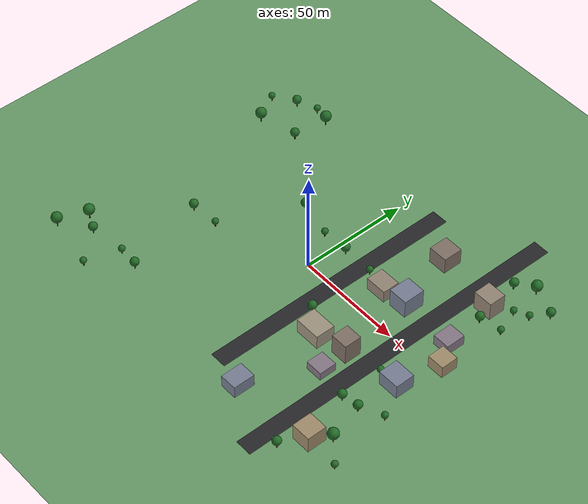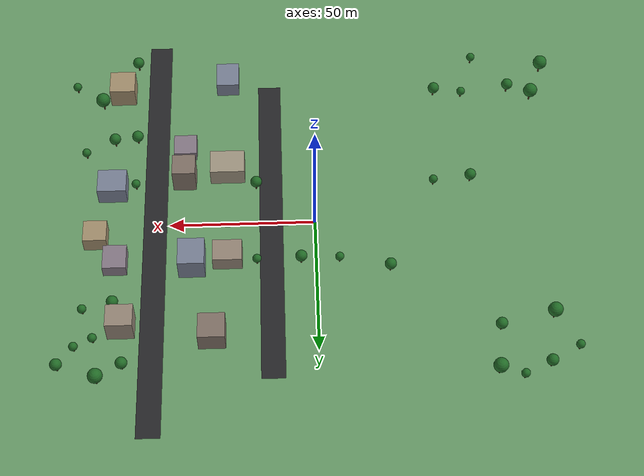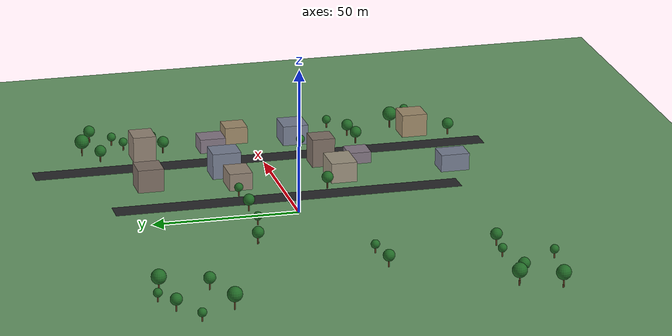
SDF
<sdf version="1.9">
 <world name="aruco_city">
  <model name="ground_plane">
   <static>true</static>
   <link name="link">
    <collision name="collision">
     <geometry><plane><normal>0 0 1</normal><size>200 200</size></plane></geometry>
    </collision>
    <visual name="visual">
     <geometry><plane><normal>0 0 1</normal><size>200 200</size></plane></geometry>
     <material><ambient>0.4 0.6 0.4 1</ambient><diffuse>0.4 0.6 0.4 1</diffuse></material>
    </visual>
   </link>
  </model>
  <model name="aruco_pad_B">
   <static>true</static>
   <pose>10 0 0.001 0 0 0</pose>
   <link name="link">
    <visual name="visual">
     <geometry><box><size>2.0 2.0 0.001</size></box></geometry>
     <material>
      <diffuse>1 1 1 1</diffuse>
      <pbr><metal><albedo_map>model://aruco_17/materials/textures/aruco_17.png</albedo_map></metal></pbr>
     </material>
    </visual>
    <collision name="collision"><geometry><box><size>2.0 2.0 0.001</size></box></geometry></collision>
   </link>
  </model>
  <model name="aruco_pad_C">
   <static>true</static>
   <pose>20 0 0.001 0 0 0</pose>
   <link name="link">
    <visual name="visual">
     <geometry><box><size>2.0 2.0 0.001</size></box></geometry>
     <material>
      <diffuse>1 1 1 1</diffuse>
      <pbr><metal><albedo_map>model://aruco_17/materials/textures/aruco_17.png</albedo_map></metal></pbr>
     </material>
    </visual>
    <collision name="collision"><geometry><box><size>2.0 2.0 0.001</size></box></geometry></collision>
   </link>
  </model>
  <model name="aruco_pad_D">
   <static>true</static>
   <pose>30 0 0.001 0 0 0</pose>
   <link name="link">
    <visual name="visual">
     <geometry><box><size>2.0 2.0 0.001</size></box></geometry>
     <material>
      <diffuse>1 1 1 1</diffuse>
      <pbr><metal><albedo_map>model://aruco_17/materials/textures/aruco_17.png</albedo_map></metal></pbr>
     </material>
    </visual>
    <collision name="collision"><geometry><box><size>2.0 2.0 0.001</size></box></geometry></collision>
   </link>
  </model>
  <model name="road_ns">
   <static>true</static>
   <pose>15 0 0.002 0 0 0</pose>
   <link name="link">
    <collision name="collision"><geometry><box><size>8 120 0.004</size></box></geometry></collision>
    <visual name="visual">
     <geometry><box><size>8 120 0.004</size></box></geometry>
     <material><ambient>0.15 0.15 0.16 1</ambient><diffuse>0.15 0.15 0.16 1</diffuse></material>
    </visual>
   </link>
  </model>
  <model name="bldg_s4">
   <static>true</static>
   <pose>30 -22 3.5 0 0 0</pose>
   <link name="link">
    <collision name="collision"><geometry><box><size>12 9 7</size></box></geometry></collision>
    <visual name="visual">
     <geometry><box><size>12 9 7</size></box></geometry>
     <material><ambient>0.62 0.58 0.5 1</ambient><diffuse>0.62 0.58 0.5 1</diffuse></material>
    </visual>
   </link>
  </model>
  <model name="bldg_s5">
   <static>true</static>
   <pose>45 -19 5.0 0 0 0</pose>
   <link name="link">
    <collision name="collision"><geometry><box><size>8 8 10</size></box></geometry></collision>
    <visual name="visual">
     <geometry><box><size>8 8 10</size></box></geometry>
     <material><ambient>0.5 0.44 0.4 1</ambient><diffuse>0.5 0.44 0.4 1</diffuse></material>
    </visual>
   </link>
  </model>
  <model name="bldg_n1">
   <static>true</static>
   <pose>30 14 3.0 0 0 0</pose>
   <link name="link">
    <collision name="collision"><geometry><box><size>10 8 6</size></box></geometry></collision>
    <visual name="visual">
     <geometry><box><size>10 8 6</size></box></geometry>
     <material><ambient>0.58 0.52 0.46 1</ambient><diffuse>0.58 0.52 0.46 1</diffuse></material>
    </visual>
   </link>
  </model>
  <model name="bldg_n2">
   <static>true</static>
   <pose>42 16 4.5 0 0 0</pose>
   <link name="link">
    <collision name="collision"><geometry><box><size>9 10 9</size></box></geometry></collision>
    <visual name="visual">
     <geometry><box><size>9 10 9</size></box></geometry>
     <material><ambient>0.47 0.5 0.58 1</ambient><diffuse>0.47 0.5 0.58 1</diffuse></material>
    </visual>
   </link>
  </model>
  <model name="road_ns_east">
   <static>true</static>
   <pose>55 0 0.002 0 0 0</pose>
   <link name="link">
    <collision name="collision"><geometry><box><size>8 160 0.004</size></box></geometry></collision>
    <visual name="visual">
     <geometry><box><size>8 160 0.004</size></box></geometry>
     <material><ambient>0.15 0.15 0.16 1</ambient><diffuse>0.15 0.15 0.16 1</diffuse></material>
    </visual>
   </link>
  </model>
  <model name="bldg_n9">
   <static>true</static>
   <pose>35 44 4.0 0 0 0</pose>
   <link name="link">
    <collision name="collision"><geometry><box><size>9 9 8</size></box></geometry></collision>
    <visual name="visual">
     <geometry><box><size>9 9 8</size></box></geometry>
     <material><ambient>0.5 0.44 0.4 1</ambient><diffuse>0.5 0.44 0.4 1</diffuse></material>
    </visual>
   </link>
  </model>
  <model name="bldg_n10">
   <static>true</static>
   <pose>65 40 4.5 0 0 0</pose>
   <link name="link">
    <collision name="collision"><geometry><box><size>9 8 9</size></box></geometry></collision>
    <visual name="visual">
     <geometry><box><size>9 8 9</size></box></geometry>
     <material><ambient>0.58 0.52 0.46 1</ambient><diffuse>0.58 0.52 0.46 1</diffuse></material>
    </visual>
   </link>
  </model>
  <model name="bldg_e1">
   <static>true</static>
   <pose>70 -15 3.5 0 0 0</pose>
   <link name="link">
    <collision name="collision"><geometry><box><size>10 9 7</size></box></geometry></collision>
    <visual name="visual">
     <geometry><box><size>10 9 7</size></box></geometry>
     <material><ambient>0.47 0.5 0.58 1</ambient><diffuse>0.47 0.5 0.58 1</diffuse></material>
    </visual>
   </link>
  </model>
  <model name="bldg_e2">
   <static>true</static>
   <pose>75 5 3.0 0 0 0</pose>
   <link name="link">
    <collision name="collision"><geometry><box><size>8 8 6</size></box></geometry></collision>
    <visual name="visual">
     <geometry><box><size>8 8 6</size></box></geometry>
     <material><ambient>0.63 0.55 0.42 1</ambient><diffuse>0.63 0.55 0.42 1</diffuse></material>
    </visual>
   </link>
  </model>
  <model name="bldg_e3">
   <static>true</static>
   <pose>68 15 2.5 0 0 0</pose>
   <link name="link">
    <collision name="collision"><geometry><box><size>8 9 5</size></box></geometry></collision>
    <visual name="visual">
     <geometry><box><size>8 9 5</size></box></geometry>
     <material><ambient>0.52 0.47 0.52 1</ambient><diffuse>0.52 0.47 0.52 1</diffuse></material>
    </visual>
   </link>
  </model>
  <model name="bldg_s9">
   <static>true</static>
   <pose>30 -62 3.0 0 0 0</pose>
   <link name="link">
    <collision name="collision"><geometry><box><size>8 10 6</size></box></geometry></collision>
    <visual name="visual">
     <geometry><box><size>8 10 6</size></box></geometry>
     <material><ambient>0.47 0.5 0.58 1</ambient><diffuse>0.47 0.5 0.58 1</diffuse></material>
    </visual>
   </link>
  </model>
  <model name="bldg_s10">
   <static>true</static>
   <pose>68 -58 4.0 0 0 0</pose>
   <link name="link">
    <collision name="collision"><geometry><box><size>9 9 8</size></box></geometry></collision>
    <visual name="visual">
     <geometry><box><size>9 9 8</size></box></geometry>
     <material><ambient>0.63 0.55 0.42 1</ambient><diffuse>0.63 0.55 0.42 1</diffuse></material>
    </visual>
   </link>
  </model>
  <model name="bldg_s11">
   <static>true</static>
   <pose>45 -32 2.0 0 0 0</pose>
   <link name="link">
    <collision name="collision"><geometry><box><size>8 8 4</size></box></geometry></collision>
    <visual name="visual">
     <geometry><box><size>8 8 4</size></box></geometry>
     <material><ambient>0.52 0.47 0.52 1</ambient><diffuse>0.52 0.47 0.52 1</diffuse></material>
    </visual>
   </link>
  </model>
  <model name="trees_north">
   <static>true</static>
   <link name="link">
    <collision name="trunk_c_0">
     <pose>-58 60 2.0 0 0 0</pose>
     <geometry><cylinder><radius>0.25</radius><length>4.0</length></cylinder></geometry>
    </collision>
    <visual name="trunk_0">
     <pose>-58 60 2.0 0 0 0</pose>
     <geometry><cylinder><radius>0.25</radius><length>4.0</length></cylinder></geometry>
     <material><ambient>0.35 0.23 0.12 1</ambient><diffuse>0.35 0.23 0.12 1</diffuse></material>
    </visual>
    <visual name="canopy_0">
     <pose>-58 60 5.2 0 0 0</pose>
     <geometry><sphere><radius>2.5</radius></sphere></geometry>
     <material><ambient>0.13 0.42 0.15 1</ambient><diffuse>0.13 0.42 0.15 1</diffuse></material>
    </visual>
    <collision name="trunk_c_1">
     <pose>-75 58 1.6 0 0 0</pose>
     <geometry><cylinder><radius>0.25</radius><length>3.2</length></cylinder></geometry>
    </collision>
    <visual name="trunk_1">
     <pose>-75 58 1.6 0 0 0</pose>
     <geometry><cylinder><radius>0.25</radius><length>3.2</length></cylinder></geometry>
     <material><ambient>0.35 0.23 0.12 1</ambient><diffuse>0.35 0.23 0.12 1</diffuse></material>
    </visual>
    <visual name="canopy_1">
     <pose>-75 58 4.1 0 0 0</pose>
     <geometry><sphere><radius>2.0</radius></sphere></geometry>
     <material><ambient>0.13 0.42 0.15 1</ambient><diffuse>0.13 0.42 0.15 1</diffuse></material>
    </visual>
    <collision name="trunk_c_2">
     <pose>-66 62 1.25 0 0 0</pose>
     <geometry><cylinder><radius>0.25</radius><length>2.5</length></cylinder></geometry>
    </collision>
    <visual name="trunk_2">
     <pose>-66 62 1.25 0 0 0</pose>
     <geometry><cylinder><radius>0.25</radius><length>2.5</length></cylinder></geometry>
     <material><ambient>0.35 0.23 0.12 1</ambient><diffuse>0.35 0.23 0.12 1</diffuse></material>
    </visual>
    <visual name="canopy_2">
     <pose>-66 62 3.1 0 0 0</pose>
     <geometry><sphere><radius>1.5</radius></sphere></geometry>
     <material><ambient>0.13 0.42 0.15 1</ambient><diffuse>0.13 0.42 0.15 1</diffuse></material>
    </visual>
    <collision name="trunk_c_3">
     <pose>-60 44 1.6 0 0 0</pose>
     <geometry><cylinder><radius>0.25</radius><length>3.2</length></cylinder></geometry>
    </collision>
    <visual name="trunk_3">
     <pose>-60 44 1.6 0 0 0</pose>
     <geometry><cylinder><radius>0.25</radius><length>3.2</length></cylinder></geometry>
     <material><ambient>0.35 0.23 0.12 1</ambient><diffuse>0.35 0.23 0.12 1</diffuse></material>
    </visual>
    <visual name="canopy_3">
     <pose>-60 44 4.1 0 0 0</pose>
     <geometry><sphere><radius>2.0</radius></sphere></geometry>
     <material><ambient>0.13 0.42 0.15 1</ambient><diffuse>0.13 0.42 0.15 1</diffuse></material>
    </visual>
    <collision name="trunk_c_4">
     <pose>-78 40 2.0 0 0 0</pose>
     <geometry><cylinder><radius>0.25</radius><length>4.0</length></cylinder></geometry>
    </collision>
    <visual name="trunk_4">
     <pose>-78 40 2.0 0 0 0</pose>
     <geometry><cylinder><radius>0.25</radius><length>4.0</length></cylinder></geometry>
     <material><ambient>0.35 0.23 0.12 1</ambient><diffuse>0.35 0.23 0.12 1</diffuse></material>
    </visual>
    <visual name="canopy_4">
     <pose>-78 40 5.2 0 0 0</pose>
     <geometry><sphere><radius>2.5</radius></sphere></geometry>
     <material><ambient>0.13 0.42 0.15 1</ambient><diffuse>0.13 0.42 0.15 1</diffuse></material>
    </visual>
    <collision name="trunk_c_5">
     <pose>-85 52 1.25 0 0 0</pose>
     <geometry><cylinder><radius>0.25</radius><length>2.5</length></cylinder></geometry>
    </collision>
    <visual name="trunk_5">
     <pose>-85 52 1.25 0 0 0</pose>
     <geometry><cylinder><radius>0.25</radius><length>2.5</length></cylinder></geometry>
     <material><ambient>0.35 0.23 0.12 1</ambient><diffuse>0.35 0.23 0.12 1</diffuse></material>
    </visual>
    <visual name="canopy_5">
     <pose>-85 52 3.1 0 0 0</pose>
     <geometry><sphere><radius>1.5</radius></sphere></geometry>
     <material><ambient>0.13 0.42 0.15 1</ambient><diffuse>0.13 0.42 0.15 1</diffuse></material>
    </visual>
    <collision name="trunk_c_6">
     <pose>64 55 1.6 0 0 0</pose>
     <geometry><cylinder><radius>0.25</radius><length>3.2</length></cylinder></geometry>
    </collision>
    <visual name="trunk_6">
     <pose>64 55 1.6 0 0 0</pose>
     <geometry><cylinder><radius>0.25</radius><length>3.2</length></cylinder></geometry>
     <material><ambient>0.35 0.23 0.12 1</ambient><diffuse>0.35 0.23 0.12 1</diffuse></material>
    </visual>
    <visual name="canopy_6">
     <pose>64 55 4.1 0 0 0</pose>
     <geometry><sphere><radius>2.0</radius></sphere></geometry>
     <material><ambient>0.13 0.42 0.15 1</ambient><diffuse>0.13 0.42 0.15 1</diffuse></material>
    </visual>
    <collision name="trunk_c_7">
     <pose>72 60 2.0 0 0 0</pose>
     <geometry><cylinder><radius>0.25</radius><length>4.0</length></cylinder></geometry>
    </collision>
    <visual name="trunk_7">
     <pose>72 60 2.0 0 0 0</pose>
     <geometry><cylinder><radius>0.25</radius><length>4.0</length></cylinder></geometry>
     <material><ambient>0.35 0.23 0.12 1</ambient><diffuse>0.35 0.23 0.12 1</diffuse></material>
    </visual>
    <visual name="canopy_7">
     <pose>72 60 5.2 0 0 0</pose>
     <geometry><sphere><radius>2.5</radius></sphere></geometry>
     <material><ambient>0.13 0.42 0.15 1</ambient><diffuse>0.13 0.42 0.15 1</diffuse></material>
    </visual>
    <collision name="trunk_c_8">
     <pose>80 48 1.25 0 0 0</pose>
     <geometry><cylinder><radius>0.25</radius><length>2.5</length></cylinder></geometry>
    </collision>
    <visual name="trunk_8">
     <pose>80 48 1.25 0 0 0</pose>
     <geometry><cylinder><radius>0.25</radius><length>2.5</length></cylinder></geometry>
     <material><ambient>0.35 0.23 0.12 1</ambient><diffuse>0.35 0.23 0.12 1</diffuse></material>
    </visual>
    <visual name="canopy_8">
     <pose>80 48 3.1 0 0 0</pose>
     <geometry><sphere><radius>1.5</radius></sphere></geometry>
     <material><ambient>0.13 0.42 0.15 1</ambient><diffuse>0.13 0.42 0.15 1</diffuse></material>
    </visual>
    <collision name="trunk_c_9">
     <pose>68 32 1.6 0 0 0</pose>
     <geometry><cylinder><radius>0.25</radius><length>3.2</length></cylinder></geometry>
    </collision>
    <visual name="trunk_9">
     <pose>68 32 1.6 0 0 0</pose>
     <geometry><cylinder><radius>0.25</radius><length>3.2</length></cylinder></geometry>
     <material><ambient>0.35 0.23 0.12 1</ambient><diffuse>0.35 0.23 0.12 1</diffuse></material>
    </visual>
    <visual name="canopy_9">
     <pose>68 32 4.1 0 0 0</pose>
     <geometry><sphere><radius>2.0</radius></sphere></geometry>
     <material><ambient>0.13 0.42 0.15 1</ambient><diffuse>0.13 0.42 0.15 1</diffuse></material>
    </visual>
    <collision name="trunk_c_10">
     <pose>78 34 1.25 0 0 0</pose>
     <geometry><cylinder><radius>0.25</radius><length>2.5</length></cylinder></geometry>
    </collision>
    <visual name="trunk_10">
     <pose>78 34 1.25 0 0 0</pose>
     <geometry><cylinder><radius>0.25</radius><length>2.5</length></cylinder></geometry>
     <material><ambient>0.35 0.23 0.12 1</ambient><diffuse>0.35 0.23 0.12 1</diffuse></material>
    </visual>
    <visual name="canopy_10">
     <pose>78 34 3.1 0 0 0</pose>
     <geometry><sphere><radius>1.5</radius></sphere></geometry>
     <material><ambient>0.13 0.42 0.15 1</ambient><diffuse>0.13 0.42 0.15 1</diffuse></material>
    </visual>
    <collision name="trunk_c_11">
     <pose>85 55 1.6 0 0 0</pose>
     <geometry><cylinder><radius>0.25</radius><length>3.2</length></cylinder></geometry>
    </collision>
    <visual name="trunk_11">
     <pose>85 55 1.6 0 0 0</pose>
     <geometry><cylinder><radius>0.25</radius><length>3.2</length></cylinder></geometry>
     <material><ambient>0.35 0.23 0.12 1</ambient><diffuse>0.35 0.23 0.12 1</diffuse></material>
    </visual>
    <visual name="canopy_11">
     <pose>85 55 4.1 0 0 0</pose>
     <geometry><sphere><radius>2.0</radius></sphere></geometry>
     <material><ambient>0.13 0.42 0.15 1</ambient><diffuse>0.13 0.42 0.15 1</diffuse></material>
    </visual>
    <collision name="trunk_c_12">
     <pose>74 45 1.25 0 0 0</pose>
     <geometry><cylinder><radius>0.25</radius><length>2.5</length></cylinder></geometry>
    </collision>
    <visual name="trunk_12">
     <pose>74 45 1.25 0 0 0</pose>
     <geometry><cylinder><radius>0.25</radius><length>2.5</length></cylinder></geometry>
     <material><ambient>0.35 0.23 0.12 1</ambient><diffuse>0.35 0.23 0.12 1</diffuse></material>
    </visual>
    <visual name="canopy_12">
     <pose>74 45 3.1 0 0 0</pose>
     <geometry><sphere><radius>1.5</radius></sphere></geometry>
     <material><ambient>0.13 0.42 0.15 1</ambient><diffuse>0.13 0.42 0.15 1</diffuse></material>
    </visual>
    <collision name="trunk_c_13">
     <pose>-8 16 1.25 0 0 0</pose>
     <geometry><cylinder><radius>0.25</radius><length>2.5</length></cylinder></geometry>
    </collision>
    <visual name="trunk_13">
     <pose>-8 16 1.25 0 0 0</pose>
     <geometry><cylinder><radius>0.25</radius><length>2.5</length></cylinder></geometry>
     <material><ambient>0.35 0.23 0.12 1</ambient><diffuse>0.35 0.23 0.12 1</diffuse></material>
    </visual>
    <visual name="canopy_13">
     <pose>-8 16 3.1 0 0 0</pose>
     <geometry><sphere><radius>1.5</radius></sphere></geometry>
     <material><ambient>0.13 0.42 0.15 1</ambient><diffuse>0.13 0.42 0.15 1</diffuse></material>
    </visual>
    <collision name="trunk_c_14">
     <pose>5 16 1.6 0 0 0</pose>
     <geometry><cylinder><radius>0.25</radius><length>3.2</length></cylinder></geometry>
    </collision>
    <visual name="trunk_14">
     <pose>5 16 1.6 0 0 0</pose>
     <geometry><cylinder><radius>0.25</radius><length>3.2</length></cylinder></geometry>
     <material><ambient>0.35 0.23 0.12 1</ambient><diffuse>0.35 0.23 0.12 1</diffuse></material>
    </visual>
    <visual name="canopy_14">
     <pose>5 16 4.1 0 0 0</pose>
     <geometry><sphere><radius>2.0</radius></sphere></geometry>
     <material><ambient>0.13 0.42 0.15 1</ambient><diffuse>0.13 0.42 0.15 1</diffuse></material>
    </visual>
    <collision name="trunk_c_15">
     <pose>20 16 1.25 0 0 0</pose>
     <geometry><cylinder><radius>0.25</radius><length>2.5</length></cylinder></geometry>
    </collision>
    <visual name="trunk_15">
     <pose>20 16 1.25 0 0 0</pose>
     <geometry><cylinder><radius>0.25</radius><length>2.5</length></cylinder></geometry>
     <material><ambient>0.35 0.23 0.12 1</ambient><diffuse>0.35 0.23 0.12 1</diffuse></material>
    </visual>
    <visual name="canopy_15">
     <pose>20 16 3.1 0 0 0</pose>
     <geometry><sphere><radius>1.5</radius></sphere></geometry>
     <material><ambient>0.13 0.42 0.15 1</ambient><diffuse>0.13 0.42 0.15 1</diffuse></material>
    </visual>
    <collision name="trunk_c_16">
     <pose>-25 20 1.6 0 0 0</pose>
     <geometry><cylinder><radius>0.25</radius><length>3.2</length></cylinder></geometry>
    </collision>
    <visual name="trunk_16">
     <pose>-25 20 1.6 0 0 0</pose>
     <geometry><cylinder><radius>0.25</radius><length>3.2</length></cylinder></geometry>
     <material><ambient>0.35 0.23 0.12 1</ambient><diffuse>0.35 0.23 0.12 1</diffuse></material>
    </visual>
    <visual name="canopy_16">
     <pose>-25 20 4.1 0 0 0</pose>
     <geometry><sphere><radius>2.0</radius></sphere></geometry>
     <material><ambient>0.13 0.42 0.15 1</ambient><diffuse>0.13 0.42 0.15 1</diffuse></material>
    </visual>
   </link>
  </model>
  <model name="trees_south">
   <static>true</static>
   <link name="link">
    <collision name="trunk_c_0">
     <pose>-80 -52 2.0 0 0 0</pose>
     <geometry><cylinder><radius>0.25</radius><length>4.0</length></cylinder></geometry>
    </collision>
    <visual name="trunk_0">
     <pose>-80 -52 2.0 0 0 0</pose>
     <geometry><cylinder><radius>0.25</radius><length>4.0</length></cylinder></geometry>
     <material><ambient>0.35 0.23 0.12 1</ambient><diffuse>0.35 0.23 0.12 1</diffuse></material>
    </visual>
    <visual name="canopy_0">
     <pose>-80 -52 5.2 0 0 0</pose>
     <geometry><sphere><radius>2.5</radius></sphere></geometry>
     <material><ambient>0.13 0.42 0.15 1</ambient><diffuse>0.13 0.42 0.15 1</diffuse></material>
    </visual>
    <collision name="trunk_c_1">
     <pose>-72 -56 1.6 0 0 0</pose>
     <geometry><cylinder><radius>0.25</radius><length>3.2</length></cylinder></geometry>
    </collision>
    <visual name="trunk_1">
     <pose>-72 -56 1.6 0 0 0</pose>
     <geometry><cylinder><radius>0.25</radius><length>3.2</length></cylinder></geometry>
     <material><ambient>0.35 0.23 0.12 1</ambient><diffuse>0.35 0.23 0.12 1</diffuse></material>
    </visual>
    <visual name="canopy_1">
     <pose>-72 -56 4.1 0 0 0</pose>
     <geometry><sphere><radius>2.0</radius></sphere></geometry>
     <material><ambient>0.13 0.42 0.15 1</ambient><diffuse>0.13 0.42 0.15 1</diffuse></material>
    </visual>
    <collision name="trunk_c_2">
     <pose>-60 -70 1.25 0 0 0</pose>
     <geometry><cylinder><radius>0.25</radius><length>2.5</length></cylinder></geometry>
    </collision>
    <visual name="trunk_2">
     <pose>-60 -70 1.25 0 0 0</pose>
     <geometry><cylinder><radius>0.25</radius><length>2.5</length></cylinder></geometry>
     <material><ambient>0.35 0.23 0.12 1</ambient><diffuse>0.35 0.23 0.12 1</diffuse></material>
    </visual>
    <visual name="canopy_2">
     <pose>-60 -70 3.1 0 0 0</pose>
     <geometry><sphere><radius>1.5</radius></sphere></geometry>
     <material><ambient>0.13 0.42 0.15 1</ambient><diffuse>0.13 0.42 0.15 1</diffuse></material>
    </visual>
    <collision name="trunk_c_3">
     <pose>-45 -55 1.6 0 0 0</pose>
     <geometry><cylinder><radius>0.25</radius><length>3.2</length></cylinder></geometry>
    </collision>
    <visual name="trunk_3">
     <pose>-45 -55 1.6 0 0 0</pose>
     <geometry><cylinder><radius>0.25</radius><length>3.2</length></cylinder></geometry>
     <material><ambient>0.35 0.23 0.12 1</ambient><diffuse>0.35 0.23 0.12 1</diffuse></material>
    </visual>
    <visual name="canopy_3">
     <pose>-45 -55 4.1 0 0 0</pose>
     <geometry><sphere><radius>2.0</radius></sphere></geometry>
     <material><ambient>0.13 0.42 0.15 1</ambient><diffuse>0.13 0.42 0.15 1</diffuse></material>
    </visual>
    <collision name="trunk_c_4">
     <pose>-85 -65 2.0 0 0 0</pose>
     <geometry><cylinder><radius>0.25</radius><length>4.0</length></cylinder></geometry>
    </collision>
    <visual name="trunk_4">
     <pose>-85 -65 2.0 0 0 0</pose>
     <geometry><cylinder><radius>0.25</radius><length>4.0</length></cylinder></geometry>
     <material><ambient>0.35 0.23 0.12 1</ambient><diffuse>0.35 0.23 0.12 1</diffuse></material>
    </visual>
    <visual name="canopy_4">
     <pose>-85 -65 5.2 0 0 0</pose>
     <geometry><sphere><radius>2.5</radius></sphere></geometry>
     <material><ambient>0.13 0.42 0.15 1</ambient><diffuse>0.13 0.42 0.15 1</diffuse></material>
    </visual>
    <collision name="trunk_c_5">
     <pose>-55 -54 1.25 0 0 0</pose>
     <geometry><cylinder><radius>0.25</radius><length>2.5</length></cylinder></geometry>
    </collision>
    <visual name="trunk_5">
     <pose>-55 -54 1.25 0 0 0</pose>
     <geometry><cylinder><radius>0.25</radius><length>2.5</length></cylinder></geometry>
     <material><ambient>0.35 0.23 0.12 1</ambient><diffuse>0.35 0.23 0.12 1</diffuse></material>
    </visual>
    <visual name="canopy_5">
     <pose>-55 -54 3.1 0 0 0</pose>
     <geometry><sphere><radius>1.5</radius></sphere></geometry>
     <material><ambient>0.13 0.42 0.15 1</ambient><diffuse>0.13 0.42 0.15 1</diffuse></material>
    </visual>
    <collision name="trunk_c_6">
     <pose>62 -36 1.6 0 0 0</pose>
     <geometry><cylinder><radius>0.25</radius><length>3.2</length></cylinder></geometry>
    </collision>
    <visual name="trunk_6">
     <pose>62 -36 1.6 0 0 0</pose>
     <geometry><cylinder><radius>0.25</radius><length>3.2</length></cylinder></geometry>
     <material><ambient>0.35 0.23 0.12 1</ambient><diffuse>0.35 0.23 0.12 1</diffuse></material>
    </visual>
    <visual name="canopy_6">
     <pose>62 -36 4.1 0 0 0</pose>
     <geometry><sphere><radius>2.0</radius></sphere></geometry>
     <material><ambient>0.13 0.42 0.15 1</ambient><diffuse>0.13 0.42 0.15 1</diffuse></material>
    </visual>
    <collision name="trunk_c_7">
     <pose>75 -52 2.0 0 0 0</pose>
     <geometry><cylinder><radius>0.25</radius><length>4.0</length></cylinder></geometry>
    </collision>
    <visual name="trunk_7">
     <pose>75 -52 2.0 0 0 0</pose>
     <geometry><cylinder><radius>0.25</radius><length>4.0</length></cylinder></geometry>
     <material><ambient>0.35 0.23 0.12 1</ambient><diffuse>0.35 0.23 0.12 1</diffuse></material>
    </visual>
    <visual name="canopy_7">
     <pose>75 -52 5.2 0 0 0</pose>
     <geometry><sphere><radius>2.5</radius></sphere></geometry>
     <material><ambient>0.13 0.42 0.15 1</ambient><diffuse>0.13 0.42 0.15 1</diffuse></material>
    </visual>
    <collision name="trunk_c_8">
     <pose>85 -60 1.25 0 0 0</pose>
     <geometry><cylinder><radius>0.25</radius><length>2.5</length></cylinder></geometry>
    </collision>
    <visual name="trunk_8">
     <pose>85 -60 1.25 0 0 0</pose>
     <geometry><cylinder><radius>0.25</radius><length>2.5</length></cylinder></geometry>
     <material><ambient>0.35 0.23 0.12 1</ambient><diffuse>0.35 0.23 0.12 1</diffuse></material>
    </visual>
    <visual name="canopy_8">
     <pose>85 -60 3.1 0 0 0</pose>
     <geometry><sphere><radius>1.5</radius></sphere></geometry>
     <material><ambient>0.13 0.42 0.15 1</ambient><diffuse>0.13 0.42 0.15 1</diffuse></material>
    </visual>
    <collision name="trunk_c_9">
     <pose>63 -70 1.6 0 0 0</pose>
     <geometry><cylinder><radius>0.25</radius><length>3.2</length></cylinder></geometry>
    </collision>
    <visual name="trunk_9">
     <pose>63 -70 1.6 0 0 0</pose>
     <geometry><cylinder><radius>0.25</radius><length>3.2</length></cylinder></geometry>
     <material><ambient>0.35 0.23 0.12 1</ambient><diffuse>0.35 0.23 0.12 1</diffuse></material>
    </visual>
    <visual name="canopy_9">
     <pose>63 -70 4.1 0 0 0</pose>
     <geometry><sphere><radius>2.0</radius></sphere></geometry>
     <material><ambient>0.13 0.42 0.15 1</ambient><diffuse>0.13 0.42 0.15 1</diffuse></material>
    </visual>
    <collision name="trunk_c_10">
     <pose>80 -30 1.25 0 0 0</pose>
     <geometry><cylinder><radius>0.25</radius><length>2.5</length></cylinder></geometry>
    </collision>
    <visual name="trunk_10">
     <pose>80 -30 1.25 0 0 0</pose>
     <geometry><cylinder><radius>0.25</radius><length>2.5</length></cylinder></geometry>
     <material><ambient>0.35 0.23 0.12 1</ambient><diffuse>0.35 0.23 0.12 1</diffuse></material>
    </visual>
    <visual name="canopy_10">
     <pose>80 -30 3.1 0 0 0</pose>
     <geometry><sphere><radius>1.5</radius></sphere></geometry>
     <material><ambient>0.13 0.42 0.15 1</ambient><diffuse>0.13 0.42 0.15 1</diffuse></material>
    </visual>
    <collision name="trunk_c_11">
     <pose>70 -35 1.6 0 0 0</pose>
     <geometry><cylinder><radius>0.25</radius><length>3.2</length></cylinder></geometry>
    </collision>
    <visual name="trunk_11">
     <pose>70 -35 1.6 0 0 0</pose>
     <geometry><cylinder><radius>0.25</radius><length>3.2</length></cylinder></geometry>
     <material><ambient>0.35 0.23 0.12 1</ambient><diffuse>0.35 0.23 0.12 1</diffuse></material>
    </visual>
    <visual name="canopy_11">
     <pose>70 -35 4.1 0 0 0</pose>
     <geometry><sphere><radius>2.0</radius></sphere></geometry>
     <material><ambient>0.13 0.42 0.15 1</ambient><diffuse>0.13 0.42 0.15 1</diffuse></material>
    </visual>
    <collision name="trunk_c_12">
     <pose>-55 -16 1.6 0 0 0</pose>
     <geometry><cylinder><radius>0.25</radius><length>3.2</length></cylinder></geometry>
    </collision>
    <visual name="trunk_12">
     <pose>-55 -16 1.6 0 0 0</pose>
     <geometry><cylinder><radius>0.25</radius><length>3.2</length></cylinder></geometry>
     <material><ambient>0.35 0.23 0.12 1</ambient><diffuse>0.35 0.23 0.12 1</diffuse></material>
    </visual>
    <visual name="canopy_12">
     <pose>-55 -16 4.1 0 0 0</pose>
     <geometry><sphere><radius>2.0</radius></sphere></geometry>
     <material><ambient>0.13 0.42 0.15 1</ambient><diffuse>0.13 0.42 0.15 1</diffuse></material>
    </visual>
    <collision name="trunk_c_13">
     <pose>-42 -15 1.25 0 0 0</pose>
     <geometry><cylinder><radius>0.25</radius><length>2.5</length></cylinder></geometry>
    </collision>
    <visual name="trunk_13">
     <pose>-42 -15 1.25 0 0 0</pose>
     <geometry><cylinder><radius>0.25</radius><length>2.5</length></cylinder></geometry>
     <material><ambient>0.35 0.23 0.12 1</ambient><diffuse>0.35 0.23 0.12 1</diffuse></material>
    </visual>
    <visual name="canopy_13">
     <pose>-42 -15 3.1 0 0 0</pose>
     <geometry><sphere><radius>1.5</radius></sphere></geometry>
     <material><ambient>0.13 0.42 0.15 1</ambient><diffuse>0.13 0.42 0.15 1</diffuse></material>
    </visual>
    <collision name="trunk_c_14">
     <pose>20 -15 1.6 0 0 0</pose>
     <geometry><cylinder><radius>0.25</radius><length>3.2</length></cylinder></geometry>
    </collision>
    <visual name="trunk_14">
     <pose>20 -15 1.6 0 0 0</pose>
     <geometry><cylinder><radius>0.25</radius><length>3.2</length></cylinder></geometry>
     <material><ambient>0.35 0.23 0.12 1</ambient><diffuse>0.35 0.23 0.12 1</diffuse></material>
    </visual>
    <visual name="canopy_14">
     <pose>20 -15 4.1 0 0 0</pose>
     <geometry><sphere><radius>2.0</radius></sphere></geometry>
     <material><ambient>0.13 0.42 0.15 1</ambient><diffuse>0.13 0.42 0.15 1</diffuse></material>
    </visual>
    <collision name="trunk_c_15">
     <pose>62 -16 1.25 0 0 0</pose>
     <geometry><cylinder><radius>0.25</radius><length>2.5</length></cylinder></geometry>
    </collision>
    <visual name="trunk_15">
     <pose>62 -16 1.25 0 0 0</pose>
     <geometry><cylinder><radius>0.25</radius><length>2.5</length></cylinder></geometry>
     <material><ambient>0.35 0.23 0.12 1</ambient><diffuse>0.35 0.23 0.12 1</diffuse></material>
    </visual>
    <visual name="canopy_15">
     <pose>62 -16 3.1 0 0 0</pose>
     <geometry><sphere><radius>1.5</radius></sphere></geometry>
     <material><ambient>0.13 0.42 0.15 1</ambient><diffuse>0.13 0.42 0.15 1</diffuse></material>
    </visual>
   </link>
  </model>
 </world>
</sdf>
